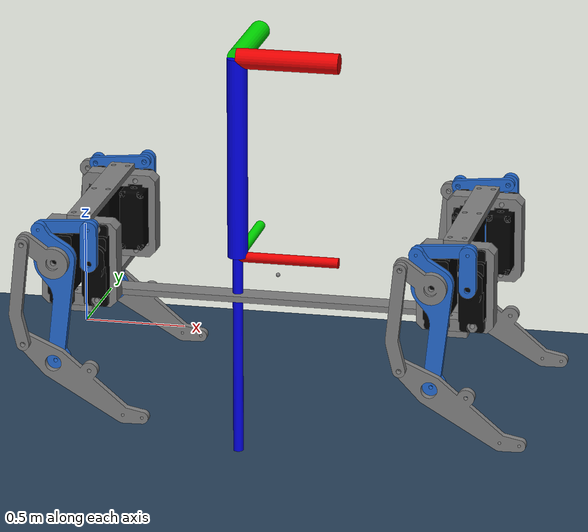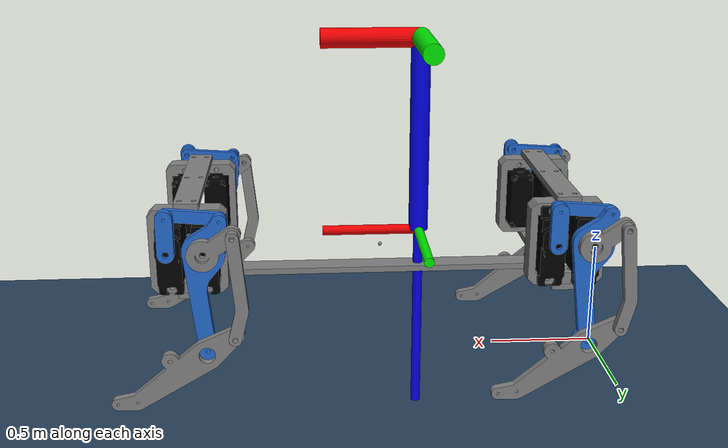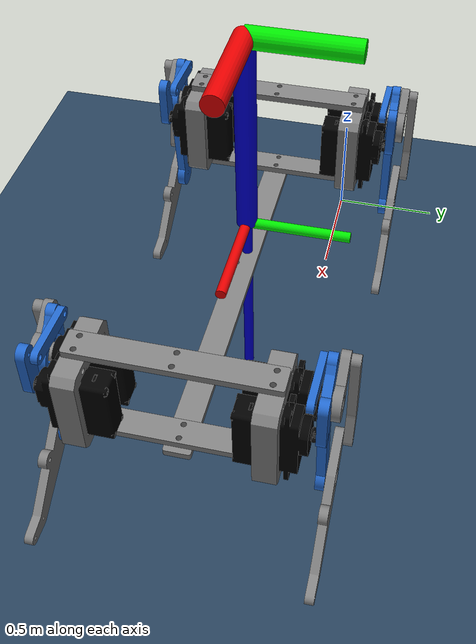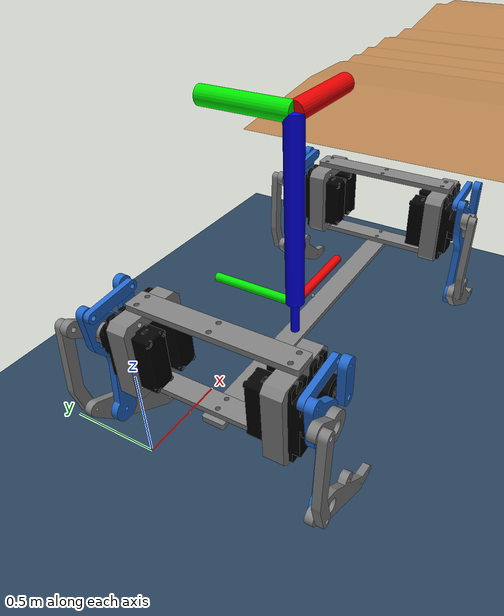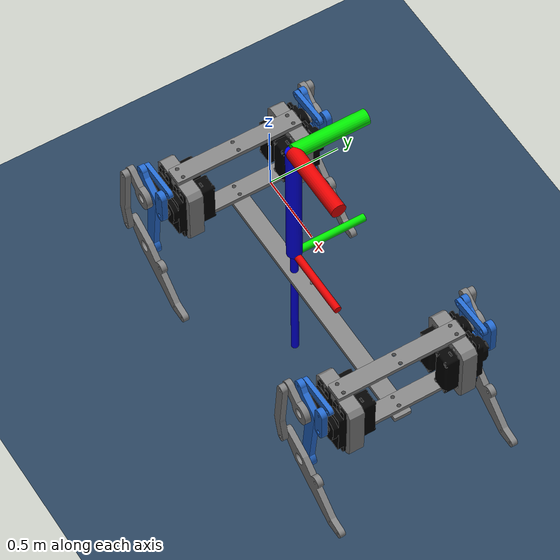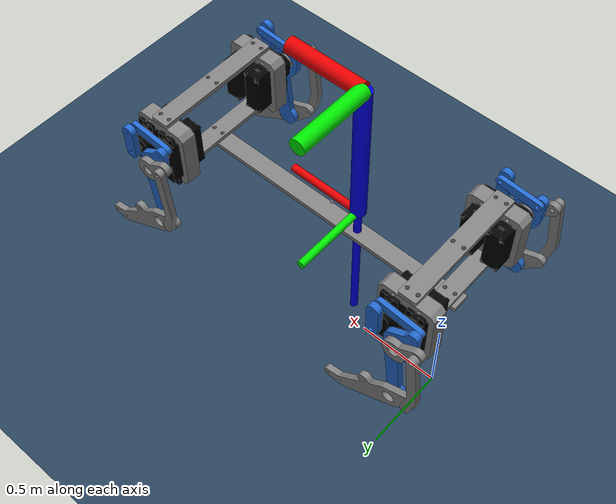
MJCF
<mujoco model="quaid">
    <compiler inertiafromgeom="true" angle="degree" coordinate="local"/>
    <option timestep="0.005" gravity="0 0 -9.81" iterations="20" integrator="RK4" >
        <!-- this was deprecated in 3.14 - you need to add your own noise now -->
    </option>

    <asset>
        <texture type="skybox" builtin="gradient" rgb1="0.3 0.5 0.7" rgb2="0 0 0" width="512" height="3072"/>
        <texture type="2d" name="groundplane" builtin="checker" mark="edge" rgb1="0.2 0.3 0.4"
                 rgb2="0.1 0.2 0.3" markrgb="0.8 0.8 0.8" width="300" height="300"/>
        <material name="groundplane" texture="groundplane" texuniform="true" texrepeat="5 5" reflectance="0.2"/>

        <texture file="../material/lightwood.png" type="cube" name="light-wood" />
        <material name="light-wood-mat" texture="light-wood" texrepeat="3 3" specular="0.4" shininess="0.1" />

        <mesh file="left_calf.stl" scale="0.01 0.01 0.01" />
        <mesh file="left_knee_horn.stl" scale="0.01 0.01 0.01" />
        <mesh file="left_knee_link.stl" scale="0.01 0.01 0.01" />
        <mesh file="left_thigh_servo.stl" scale="0.01 0.01 0.01" />
        <mesh file="left_knee_servo.stl" scale="0.01 0.01 0.01" />
        <mesh file="left_servo_mount.stl" scale="0.01 0.01 0.01" />
        <mesh file="left_thigh.stl" scale="0.01 0.01 0.01" />
        <mesh file="left_thigh_horn.stl" scale="0.01 0.01 0.01" />
        <mesh file="left_thigh_link.stl" scale="0.01 0.01 0.01" />
        <mesh file="right_calf.stl" scale="0.01 0.01 0.01" />
        <mesh file="right_knee_horn.stl" scale="0.01 0.01 0.01" />
        <mesh file="right_knee_link.stl" scale="0.01 0.01 0.01" />
        <mesh file="right_thigh_servo.stl" scale="0.01 0.01 0.01" />
        <mesh file="right_knee_servo.stl" scale="0.01 0.01 0.01" />
        <mesh file="right_servo_mount.stl" scale="0.01 0.01 0.01" />
        <mesh file="right_thigh.stl" scale="0.01 0.01 0.01" />
        <mesh file="right_thigh_horn.stl" scale="0.01 0.01 0.01" />
        <mesh file="right_thigh_link.stl" scale="0.01 0.01 0.01" />
        <mesh file="top_link.stl" scale="0.01 0.01 0.01" />
        <mesh file="bottom_link.stl" scale="0.01 0.01 0.01" />
        <mesh file="fuselage.stl" scale="0.01 0.01 0.01" />

        <mesh file="../scene/scene_incline.stl" scale="0.02 0.04 0.01" />
        <mesh file="../scene/incline_uneven.stl" scale="0.03 0.04 0.03" />

        <hfield name="perlin_hfield" size="10.0 7.0 0.2 0.2" file="../scene/height_field.png"/>
    </asset>

    <default>
        <joint armature="1" damping="1" limited="true"/>
        <geom conaffinity="0" condim="3" density="200.0" margin="0.002" />
        <!--  friction = "0.5 0.5 0.5"       -->
        <!-- rgba="0.8 0.6 0.4 1" -->

        <default class="collision">
            <geom contype="1" group="3" type="capsule"/>
            <default class="collision-left">
                <geom contype="2" conaffinity="4"/>
            </default>
            <default class="collision-right">
                <geom contype="4" conaffinity="2"/>
            </default>
        </default>
    </default>

    <worldbody>
        <light pos="0 0 1"/>
        <light pos="0 -0.2 1" dir="0 0.2 -0.8" directional="true"/>
        <geom name="floor" size="0 0 0.05" type="plane" material="groundplane" pos="0 0 -0.5" friction="0.1"  conaffinity="1" condim="3"/>

        <body name="quaid" pos="2 0 0.5" euler="0 0 0">
            <!--   this will make it fall down -->
            <freejoint />
            <geom name="fuselage" type="mesh" mesh="fuselage" euler="0 0 90" />
            <site name="imu" size="0.01" pos="-0.95 -0.34 -0.08"/>
            <body name="front" pos="0 0 0" euler="0 0 90">
                <geom name="bottom_link_front" type="mesh" mesh="bottom_link" />
                <geom name="top_link_front" type="mesh" mesh="top_link" />

                <body name="leg_fl">
                    <geom name="servos_mount_fl" type="mesh" mesh="left_servo_mount"  />
                    <geom name="servo1_fl" type="mesh" mesh="left_thigh_servo" rgba="0 0 0 1"/>
                    <body name="thigh1_fl" pos="0 0 0">
                        <joint name="thigh_joint1_fl" type="hinge" pos="0.100 -0.085 0.11" axis="1 0 0" range="0.0 45.0" damping="10" limited="true" />
                        <geom name="thigh_horn_fl1" type="mesh" mesh="left_thigh_horn" rgba="0.137 0.408 0.8 1" />
                        <body name="thigh_link_b1_fl">
                            <joint name="thigh_link_joint1_fl" type="hinge" pos="0.07 -0.085 0.28" axis="1 0 0" damping="0.05" limited="false" />
                            <geom name="thigh_link1_fl" type="mesh" mesh="left_thigh_link"  rgba="0.137 0.408 0.8 1"  />
                        </body>
                    </body>

                    <body name="thigh_limb_b1_fl">
                        <joint name="thigh_limb_joint1_fl" type="hinge" pos="0.1 0.085 0.11" axis="1 0 0" damping="0.05" limited="false" />
                        <geom name="thigh_limb1_fl" type="mesh" mesh="left_thigh"  rgba="0.137 0.408 0.8 1"  />
                    </body>

                    <geom name="servo2_fl" type="mesh" mesh="left_knee_servo" rgba="0 0 0 1" />
                    <body name="knee_fl" >
                        <joint name="knee1_joint_fl" type="hinge" pos="0.1 0.085 0.11" axis="1 0 0" range="-25 25.0" damping="10" limited="true"  />
                        <geom name="knee_horn1_fl" type="mesh" mesh="left_knee_horn" />
                        <body name="knee_link_b1_fl">
                            <joint name="knee1_link_joint_fl" type="hinge" pos="0.1 0.225 0.205" axis="1 0 0" damping="0.05" limited="false" />
                            <geom name="knee_link1_fl" type="mesh" mesh="left_knee_link" />
                            <body name="calf1_body_fl">
                                <joint name="calf1_joint_fl" type="hinge" pos="0.15 0.228 -0.29" axis="1 0 0" damping="5" limited="false" />
                                <geom name="calf1_fl" type="mesh" mesh="left_calf" />
                            </body>
                        </body>
                    </body>
                </body>

                <body name="leg_fr" pos="-0.78 0 0" >
                    <geom name="servos_mount_fr" type="mesh" mesh="right_servo_mount"  />
                    <geom name="servo1_fr" type="mesh" mesh="right_thigh_servo" rgba="0 0 0 1"/>
                    <body name="thigh1_fr" pos="0 0 0">
                        <joint name="thigh_joint1_fr" type="hinge" pos="-0.00 -0.085 0.11" axis="-1 0 0" range="-45.0 0" damping="10" limited="true" />
                        <geom name="thigh_horn_fr1" type="mesh" mesh="right_thigh_horn"  rgba="0.137 0.408 0.8 1" />
                        <body name="thigh_link_b1_fr">
                            <joint name="thigh_link_joint1_fr" type="hinge" pos="0.0 -0.085 0.28" axis="-1 0 0" damping="0.05" limited="false" />
                            <geom name="thigh_link1_fr" type="mesh" mesh="right_thigh_link"  rgba="0.137 0.408 0.8 1" />
                        </body>
                    </body>

                    <body name="thigh_limb_b1_fr">
                        <joint name="thigh_limb_joint1_fr" type="hinge" pos="0.0 0.085 0.11" axis="-1 0 0" damping="0.05" limited="false" />
                        <geom name="thigh_limb1_fr" type="mesh" mesh="right_thigh"  rgba="0.137 0.408 0.8 1" />
                    </body>

                    <geom name="servo2_fr" type="mesh" mesh="right_knee_servo" rgba="0 0 0 1" />
                    <body name="knee_fr" >
                        <joint name="knee1_joint_fr" type="hinge" pos="-0.1 0.085 0.11" axis="-1 0 0" range="-25.0 25.0" damping="10" limited="true" />
                        <geom name="knee_horn1_fr" type="mesh" mesh="right_knee_horn" />
                        <body name="knee_link_b1_fr">
                            <joint name="knee1_link_joint_fr" type="hinge" pos="-0.1 0.225 0.205" axis="-1 0 0" damping="0.05" limited="false" />
                            <geom name="knee_link1_fr" type="mesh" mesh="right_knee_link" />
                            <body name="calf1_body_fr">
                                <joint name="calf1_joint_fr" type="hinge" pos="-0.15 0.228 -0.29" axis="-1 0 0" damping="5" limited="false" />
                                <geom name="calf1_fr" type="mesh" mesh="right_calf"  />
                            </body>
                        </body>
                    </body>
                </body>
            </body>

            <body name="back" pos="-1.83 0 0" euler="0 0 90">
                <geom name="bottom_link_back" type="mesh" mesh="bottom_link" />
                <geom name="top_link_back" type="mesh" mesh="top_link" />

                <body name="leg_bl">
                    <geom name="servos_mount_bl" type="mesh" mesh="left_servo_mount"  />
                    <geom name="servo1_bl" type="mesh" mesh="left_thigh_servo" rgba="0 0 0 1"/>
                    <body name="thigh1_bl" pos="0 0 0">
                        <joint name="thigh_joint1_bl" type="hinge" pos="0.100 -0.085 0.11" axis="1 0 0" range="0.0 45.0" damping="10" limited="true" />
                        <geom name="thigh_horn_bl1" type="mesh" mesh="left_thigh_horn" rgba="0.137 0.408 0.8 1" />
                        <body name="thigh_link_b1_bl">
                            <joint name="thigh_link_joint1_bl" type="hinge" pos="0.07 -0.085 0.28" axis="1 0 0" damping="0.05" limited="false" />
                            <geom name="thigh_link1_bl" type="mesh" mesh="left_thigh_link"  rgba="0.137 0.408 0.8 1"  />
                        </body>
                    </body>

                    <body name="thigh_limb_b1_bl">
                        <joint name="thigh_limb_joint1_bl" type="hinge" pos="0.1 0.085 0.11" axis="1 0 0" damping="0.05" limited="false" />
                        <geom name="thigh_limb1_bl" type="mesh" mesh="left_thigh"  rgba="0.137 0.408 0.8 1"  />
                    </body>

                    <geom name="servo2_bl" type="mesh" mesh="left_knee_servo" rgba="0 0 0 1" />
                    <body name="knee_bl" >
                        <joint name="knee1_joint_bl" type="hinge" pos="0.1 0.085 0.11" axis="1 0 0" range="-25 25.0" damping="10" limited="true" />
                        <geom name="knee_horn1_bl" type="mesh" mesh="left_knee_horn" />
                        <body name="knee_link_b1_bl">
                            <joint name="knee1_link_joint_bl" type="hinge" pos="0.1 0.225 0.205" axis="1 0 0" damping="0.05" limited="false" />
                            <geom name="knee_link1_bl" type="mesh" mesh="left_knee_link" />
                            <body name="calf1_body_bl">
                                <joint name="calf1_joint_bl" type="hinge" pos="0.15 0.228 -0.29" axis="1 0 0" damping="5" limited="false" />
                                <geom name="calf1_bl" type="mesh" mesh="left_calf" />
                            </body>
                        </body>
                    </body>
                </body>

                <body name="leg_br" pos="-0.78 0 0" >
                    <geom name="servos_mount_br" type="mesh" mesh="right_servo_mount"  />
                    <geom name="servo1_br" type="mesh" mesh="right_thigh_servo" rgba="0 0 0 1"/>
                    <body name="thigh1_br" pos="0 0 0">
                        <joint name="thigh_joint1_br" type="hinge" pos="-0.00 -0.085 0.11" axis="-1 0 0" range="-45.0 0" damping="10" limited="true" />
                        <geom name="thigh_horn_br1" type="mesh" mesh="right_thigh_horn"  rgba="0.137 0.408 0.8 1" />
                        <body name="thigh_link_b1_br">
                            <joint name="thigh_link_joint1_br" type="hinge" pos="0.0 -0.085 0.28" axis="-1 0 0" damping="0.05" limited="false" />
                            <geom name="thigh_link1_br" type="mesh" mesh="right_thigh_link"  rgba="0.137 0.408 0.8 1" />
                        </body>
                    </body>

                    <body name="thigh_limb_b1_br">
                        <joint name="thigh_limb_joint1_br" type="hinge" pos="0.0 0.085 0.11" axis="-1 0 0" damping="0.05" limited="false" />
                        <geom name="thigh_limb1_br" type="mesh" mesh="right_thigh"  rgba="0.137 0.408 0.8 1" />
                    </body>

                    <geom name="servo2_br" type="mesh" mesh="right_knee_servo" rgba="0 0 0 1" />
                    <body name="knee_br" >
                        <joint name="knee1_joint_br" type="hinge" pos="-0.1 0.085 0.11" axis="-1 0 0" range="-25.0 25.0" damping="10" limited="true" />
                        <geom name="knee_horn1_br" type="mesh" mesh="right_knee_horn" />
                        <body name="knee_link_b1_br">
                            <joint name="knee1_link_joint_br" type="hinge" pos="-0.1 0.225 0.205" axis="-1 0 0" damping="0.05" limited="false" />
                            <geom name="knee_link1_br" type="mesh" mesh="right_knee_link" />
                            <body name="calf1_body_br">
                                <joint name="calf1_joint_br" type="hinge" pos="-0.15 0.228 -0.29" axis="-1 0 0" damping="5" limited="false" />
                                <geom name="calf1_br" type="mesh" mesh="right_calf"  />
                            </body>
                        </body>
                    </body>
                </body>

            </body>

        </body>

        <body name="frame_reference" pos="0.85 -0.34 0" mocap="true">
            <geom type="cylinder" size="0.025 0.5" rgba="0 0 .9 1" />
            <geom type="cylinder" size="0.025 0.25" rgba=".9 0 0 1" euler="0 90 0" pos="0.25 0 .5"/>
            <geom type="cylinder" size="0.025 0.25" rgba="0 .9 0 1" euler="90 0 0" pos="0.0 0.25 .5"/>
        </body>

        <body name="marker" pos="0.85 -0.34 1" mocap="true">
            <geom type="cylinder" size="0.05 0.5" rgba="0 0 .9 1" />
            <geom type="cylinder" size="0.05 0.25" rgba=".9 0 0 1" euler="0 90 0" pos="0.25 0 .5"/>
            <geom type="cylinder" size="0.05 0.25" rgba="0 .9 0 1" euler="90 0 0" pos="0.0 0.25 .5"/>
        </body>

        <body name="incline" pos="0 0 -0.50" euler="0 0 0" mocap="true">
            <geom name="incline" type="mesh" mesh="incline_uneven" pos="9 3 0"  conaffinity="1" condim="3" material="light-wood-mat" />
        </body>

    </worldbody>

    <equality>
        <!-- These could also be equality/joint -->
        <connect body1="thigh_link_b1_fl" body2="thigh_limb_b1_fl" anchor="0.225 0.164 0.26"/>
        <connect body1="calf1_body_fl" body2="thigh_limb_b1_fl" anchor="0.25 0.085 -0.39"/>
        <connect body1="thigh_link_b1_fr" body2="thigh_limb_b1_fr" anchor="-0.1 0.164 0.26"/>
        <connect body1="calf1_body_fr" body2="thigh_limb_b1_fr" anchor="-0.13 0.085 -0.39"/>

        <connect body1="thigh_link_b1_bl" body2="thigh_limb_b1_bl" anchor="0.225 0.164 0.26"/>
        <connect body1="calf1_body_bl" body2="thigh_limb_b1_bl" anchor="0.25 0.085 -0.39"/>
        <connect body1="thigh_link_b1_br" body2="thigh_limb_b1_br" anchor="-0.1 0.164 0.26"/>
        <connect body1="calf1_body_br" body2="thigh_limb_b1_br" anchor="-0.13 0.085 -0.39"/>
    </equality>

    <actuator>
        <position joint="knee1_joint_fl" ctrlrange="-0.5 0.5"
                  kp="200"
                  ctrllimited="true" name="knee_servo1_fl"/>
        <velocity joint="knee1_joint_fl" kv="1" name="knee1_velocity_fl" />

        <position joint="thigh_joint1_fl" ctrlrange="0 0.60"
                  kp="200"
                  ctrllimited="true" name="thigh_servo1_fl"/>
        <velocity joint="thigh_joint1_fl" kv="1" name="thigh1_velocity_fl" />

        <position joint="knee1_joint_fr" ctrlrange="-0.5 0.5"
                  kp="200"
                  ctrllimited="true" name="knee_servo1_fr"/>
        <velocity joint="knee1_joint_fr" kv="1" name="knee1_velocity_fr" />

        <position joint="thigh_joint1_fr" ctrlrange="-0.6 0"
                  kp="200"
                  ctrllimited="true" name="thigh_servo1_fr"/>
        <velocity joint="thigh_joint1_fr" kv="1" name="thigh1_velocity_fr" />

        <position joint="knee1_joint_bl" ctrlrange="-0.5 0.5"
                  kp="200"
                  ctrllimited="true" name="knee_servo1_bl"/>
        <velocity joint="knee1_joint_bl" kv="1" name="knee1_velocity_bl" />

        <position joint="thigh_joint1_bl" ctrlrange="0 0.60"
                  kp="200"
                  ctrllimited="true" name="thigh_servo1_bl"/>
        <velocity joint="thigh_joint1_bl" kv="1" name="thigh1_velocity_bl" />

        <position joint="knee1_joint_br" ctrlrange="-0.5 0.5"
                  kp="200"
                  ctrllimited="true" name="knee_servo1_br"/>
        <velocity joint="knee1_joint_br" kv="1" name="knee1_velocity_br" />

        <position joint="thigh_joint1_br" ctrlrange="-0.60 0"
                  kp="200"
                  ctrllimited="true" name="thigh_servo1_br"/>
        <velocity joint="thigh_joint1_br" kv="1" name="thigh1_velocity_br" />

    </actuator>

    <sensor>
        <framequat name="orientation" objtype="site" objname="imu" noise="0.05"/>
        <framepos name="position" objtype="site" objname="imu" noise="0.05"/>

        <!-- these should measure the force at joint -->
        <jointactuatorfrc name="knee_fl_torque" joint="knee1_joint_fl" />
        <jointactuatorfrc name="thigh_fl_torque" joint="thigh_joint1_fl" />
        <jointactuatorfrc name="knee_fr_torque" joint="knee1_joint_fr" />
        <jointactuatorfrc name="thigh_fr_torque" joint="thigh_joint1_fr" />

        <jointactuatorfrc name="knee_bl_torque" joint="knee1_joint_bl" />
        <jointactuatorfrc name="thigh_bl_torque" joint="thigh_joint1_bl" />
        <jointactuatorfrc name="knee_br_torque" joint="knee1_joint_br" />
        <jointactuatorfrc name="thigh_br_torque" joint="thigh_joint1_br" />
        <accelerometer name="acceleration" site="imu" /> <!-- noise="1e-2" cutoff="157" -->
        <gyro name="gyro" site="imu" /> <!--  noise="5e-4" cutoff="34.9" -->
        <magnetometer name="magnetometer" site="imu"/>
    </sensor>
</mujoco>
